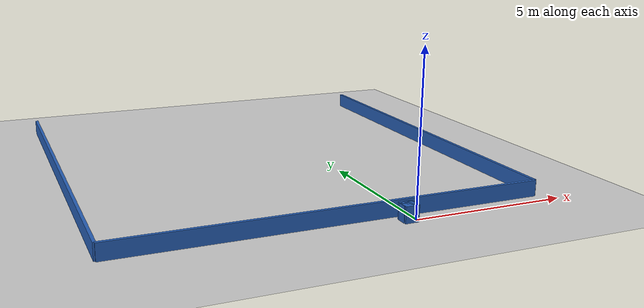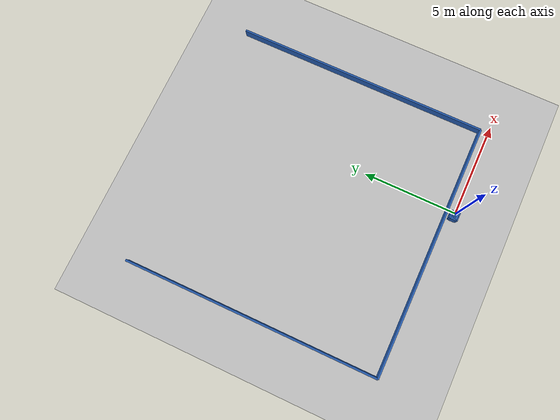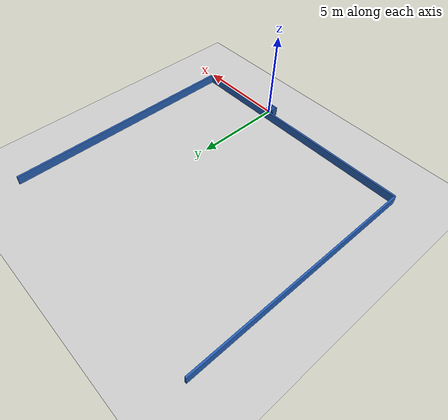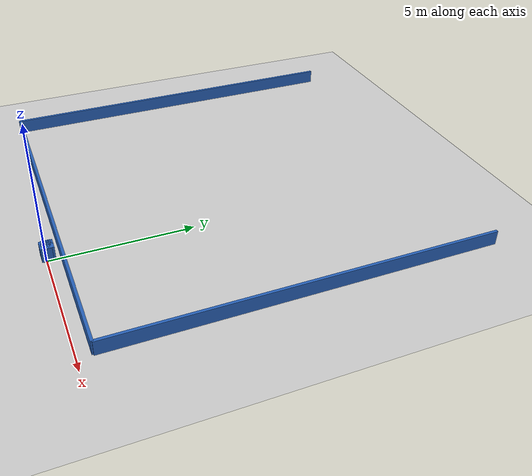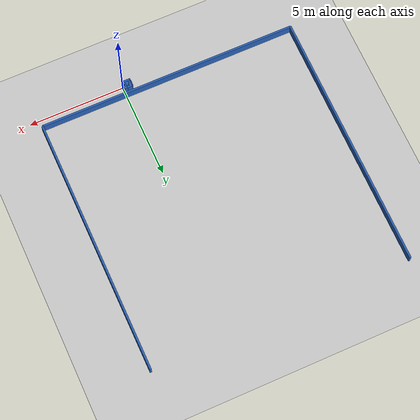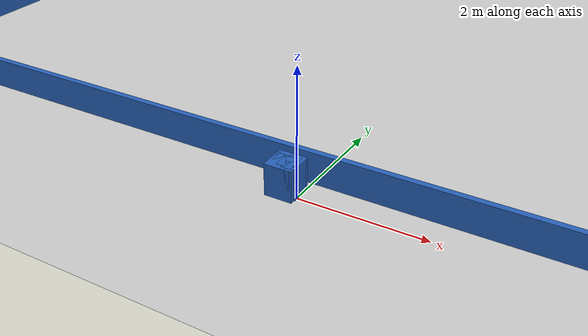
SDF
<?xml version="1.0" ?>
    <sdf version="1.5">
      <world name="default">
        <!-- A global light source -->
        <include>
          <uri>model://sun</uri>
        </include>
        <!-- A ground plane -->
        <include>
          <uri>model://ground_plane</uri>
        </include>

    <model name='libopen_space_final_T2B_56_75'>
      <static>1</static>
      <pose frame=''>-0.225000 0.075000 0.000000 0.000000 0.000000 0.000000</pose>
      <link name='link'>
        <inertial>
          <mass>1</mass>
          <inertia>
            <ixx>0.145833</ixx>
            <ixy>0</ixy>
            <ixz>0</ixz>
            <iyy>0.145833</iyy>
            <iyz>0</iyz>
            <izz>0.125</izz>
          </inertia>
        </inertial>
        <collision name='collision'>
          <geometry>
            <box>
              <size>0.36 0.27 1</size>
            </box>
          </geometry>
          <max_contacts>10</max_contacts>
          <surface>
            <contact>
              <ode/>
            </contact>
            <bounce/>
            <friction>
              <torsional>
                <ode/>
              </torsional>
              <ode/>
            </friction>
          </surface>
        </collision>
        <visual name='visual'>
          <geometry>
            <box>
              <size>0.36 0.27 1</size>
            </box>
          </geometry>
	    <material>
              <ambient>0.152000 0.379000 0.720000 1</ambient>
	      <diffuse>0.152000 0.379000 0.720000 1</diffuse>
          </material>
          <material>
            <script>
              <name>Gazebo/Grey</name>
              <uri>file://media/materials/scripts/gazebo.material</uri>
            </script>
          </material>
        </visual>
        <self_collide>0</self_collide>
        <kinematic>0</kinematic>
        <gravity>1</gravity>
      </link>
      <plugin name='libopen_space_final_T2B_56_75' filename='libopen_space_final_T2B_56_75.so'/>
    </model>

    <model name='libopen_space_final_T2B_123_20'>
      <static>1</static>
      <pose frame=''>-0.225000 0.075000 0.000000 0.000000 0.000000 0.000000</pose>
      <link name='link'>
        <inertial>
          <mass>1</mass>
          <inertia>
            <ixx>0.145833</ixx>
            <ixy>0</ixy>
            <ixz>0</ixz>
            <iyy>0.145833</iyy>
            <iyz>0</iyz>
            <izz>0.125</izz>
          </inertia>
        </inertial>
        <collision name='collision'>
          <geometry>
            <box>
              <size>0.40 0.28 1</size>
            </box>
          </geometry>
          <max_contacts>10</max_contacts>
          <surface>
            <contact>
              <ode/>
            </contact>
            <bounce/>
            <friction>
              <torsional>
                <ode/>
              </torsional>
              <ode/>
            </friction>
          </surface>
        </collision>
        <visual name='visual'>
          <geometry>
            <box>
              <size>0.40 0.28 1</size>
            </box>
          </geometry>
	    <material>
              <ambient>0.152000 0.379000 0.720000 1</ambient>
	      <diffuse>0.152000 0.379000 0.720000 1</diffuse>
          </material>
          <material>
            <script>
              <name>Gazebo/Grey</name>
              <uri>file://media/materials/scripts/gazebo.material</uri>
            </script>
          </material>
        </visual>
        <self_collide>0</self_collide>
        <kinematic>0</kinematic>
        <gravity>1</gravity>
      </link>
      <plugin name='libopen_space_final_T2B_123_20' filename='libopen_space_final_T2B_123_20.so'/>
    </model>

    <model name='libopen_space_final_T2B_112_28'>
      <static>1</static>
      <pose frame=''>-0.225000 0.075000 0.000000 0.000000 0.000000 0.000000</pose>
      <link name='link'>
        <inertial>
          <mass>1</mass>
          <inertia>
            <ixx>0.145833</ixx>
            <ixy>0</ixy>
            <ixz>0</ixz>
            <iyy>0.145833</iyy>
            <iyz>0</iyz>
            <izz>0.125</izz>
          </inertia>
        </inertial>
        <collision name='collision'>
          <geometry>
            <box>
              <size>0.44 0.45 1</size>
            </box>
          </geometry>
          <max_contacts>10</max_contacts>
          <surface>
            <contact>
              <ode/>
            </contact>
            <bounce/>
            <friction>
              <torsional>
                <ode/>
              </torsional>
              <ode/>
            </friction>
          </surface>
        </collision>
        <visual name='visual'>
          <geometry>
            <box>
              <size>0.44 0.45 1</size>
            </box>
          </geometry>
	    <material>
              <ambient>0.152000 0.379000 0.720000 1</ambient>
	      <diffuse>0.152000 0.379000 0.720000 1</diffuse>
          </material>
          <material>
            <script>
              <name>Gazebo/Grey</name>
              <uri>file://media/materials/scripts/gazebo.material</uri>
            </script>
          </material>
        </visual>
        <self_collide>0</self_collide>
        <kinematic>0</kinematic>
        <gravity>1</gravity>
      </link>
      <plugin name='libopen_space_final_T2B_112_28' filename='libopen_space_final_T2B_112_28.so'/>
    </model>

    <model name='libopen_space_final_T2B_119_97'>
      <static>1</static>
      <pose frame=''>-0.225000 0.075000 0.000000 0.000000 0.000000 0.000000</pose>
      <link name='link'>
        <inertial>
          <mass>1</mass>
          <inertia>
            <ixx>0.145833</ixx>
            <ixy>0</ixy>
            <ixz>0</ixz>
            <iyy>0.145833</iyy>
            <iyz>0</iyz>
            <izz>0.125</izz>
          </inertia>
        </inertial>
        <collision name='collision'>
          <geometry>
            <box>
              <size>0.47 0.30 1</size>
            </box>
          </geometry>
          <max_contacts>10</max_contacts>
          <surface>
            <contact>
              <ode/>
            </contact>
            <bounce/>
            <friction>
              <torsional>
                <ode/>
              </torsional>
              <ode/>
            </friction>
          </surface>
        </collision>
        <visual name='visual'>
          <geometry>
            <box>
              <size>0.47 0.30 1</size>
            </box>
          </geometry>
	    <material>
              <ambient>0.152000 0.379000 0.720000 1</ambient>
	      <diffuse>0.152000 0.379000 0.720000 1</diffuse>
          </material>
          <material>
            <script>
              <name>Gazebo/Grey</name>
              <uri>file://media/materials/scripts/gazebo.material</uri>
            </script>
          </material>
        </visual>
        <self_collide>0</self_collide>
        <kinematic>0</kinematic>
        <gravity>1</gravity>
      </link>
      <plugin name='libopen_space_final_T2B_119_97' filename='libopen_space_final_T2B_119_97.so'/>
    </model>

    <model name='libopen_space_final_T2B_81_4'>
      <static>1</static>
      <pose frame=''>-0.225000 0.075000 0.000000 0.000000 0.000000 0.000000</pose>
      <link name='link'>
        <inertial>
          <mass>1</mass>
          <inertia>
            <ixx>0.145833</ixx>
            <ixy>0</ixy>
            <ixz>0</ixz>
            <iyy>0.145833</iyy>
            <iyz>0</iyz>
            <izz>0.125</izz>
          </inertia>
        </inertial>
        <collision name='collision'>
          <geometry>
            <box>
              <size>0.33 0.34 1</size>
            </box>
          </geometry>
          <max_contacts>10</max_contacts>
          <surface>
            <contact>
              <ode/>
            </contact>
            <bounce/>
            <friction>
              <torsional>
                <ode/>
              </torsional>
              <ode/>
            </friction>
          </surface>
        </collision>
        <visual name='visual'>
          <geometry>
            <box>
              <size>0.33 0.34 1</size>
            </box>
          </geometry>
	    <material>
              <ambient>0.152000 0.379000 0.720000 1</ambient>
	      <diffuse>0.152000 0.379000 0.720000 1</diffuse>
          </material>
          <material>
            <script>
              <name>Gazebo/Grey</name>
              <uri>file://media/materials/scripts/gazebo.material</uri>
            </script>
          </material>
        </visual>
        <self_collide>0</self_collide>
        <kinematic>0</kinematic>
        <gravity>1</gravity>
      </link>
      <plugin name='libopen_space_final_T2B_81_4' filename='libopen_space_final_T2B_81_4.so'/>
    </model>

    <model name='libopen_space_final_T2B_51_63'>
      <static>1</static>
      <pose frame=''>-0.225000 0.075000 0.000000 0.000000 0.000000 0.000000</pose>
      <link name='link'>
        <inertial>
          <mass>1</mass>
          <inertia>
            <ixx>0.145833</ixx>
            <ixy>0</ixy>
            <ixz>0</ixz>
            <iyy>0.145833</iyy>
            <iyz>0</iyz>
            <izz>0.125</izz>
          </inertia>
        </inertial>
        <collision name='collision'>
          <geometry>
            <box>
              <size>0.13 0.14 1</size>
            </box>
          </geometry>
          <max_contacts>10</max_contacts>
          <surface>
            <contact>
              <ode/>
            </contact>
            <bounce/>
            <friction>
              <torsional>
                <ode/>
              </torsional>
              <ode/>
            </friction>
          </surface>
        </collision>
        <visual name='visual'>
          <geometry>
            <box>
              <size>0.13 0.14 1</size>
            </box>
          </geometry>
	    <material>
              <ambient>0.152000 0.379000 0.720000 1</ambient>
	      <diffuse>0.152000 0.379000 0.720000 1</diffuse>
          </material>
          <material>
            <script>
              <name>Gazebo/Grey</name>
              <uri>file://media/materials/scripts/gazebo.material</uri>
            </script>
          </material>
        </visual>
        <self_collide>0</self_collide>
        <kinematic>0</kinematic>
        <gravity>1</gravity>
      </link>
      <plugin name='libopen_space_final_T2B_51_63' filename='libopen_space_final_T2B_51_63.so'/>
    </model>

    <model name='libopen_space_final_T2B_125_67'>
      <static>1</static>
      <pose frame=''>-0.225000 0.075000 0.000000 0.000000 0.000000 0.000000</pose>
      <link name='link'>
        <inertial>
          <mass>1</mass>
          <inertia>
            <ixx>0.145833</ixx>
            <ixy>0</ixy>
            <ixz>0</ixz>
            <iyy>0.145833</iyy>
            <iyz>0</iyz>
            <izz>0.125</izz>
          </inertia>
        </inertial>
        <collision name='collision'>
          <geometry>
            <box>
              <size>0.16 0.27 1</size>
            </box>
          </geometry>
          <max_contacts>10</max_contacts>
          <surface>
            <contact>
              <ode/>
            </contact>
            <bounce/>
            <friction>
              <torsional>
                <ode/>
              </torsional>
              <ode/>
            </friction>
          </surface>
        </collision>
        <visual name='visual'>
          <geometry>
            <box>
              <size>0.16 0.27 1</size>
            </box>
          </geometry>
	    <material>
              <ambient>0.152000 0.379000 0.720000 1</ambient>
	      <diffuse>0.152000 0.379000 0.720000 1</diffuse>
          </material>
          <material>
            <script>
              <name>Gazebo/Grey</name>
              <uri>file://media/materials/scripts/gazebo.material</uri>
            </script>
          </material>
        </visual>
        <self_collide>0</self_collide>
        <kinematic>0</kinematic>
        <gravity>1</gravity>
      </link>
      <plugin name='libopen_space_final_T2B_125_67' filename='libopen_space_final_T2B_125_67.so'/>
    </model>

    <model name='libopen_space_final_T2B_81_89'>
      <static>1</static>
      <pose frame=''>-0.225000 0.075000 0.000000 0.000000 0.000000 0.000000</pose>
      <link name='link'>
        <inertial>
          <mass>1</mass>
          <inertia>
            <ixx>0.145833</ixx>
            <ixy>0</ixy>
            <ixz>0</ixz>
            <iyy>0.145833</iyy>
            <iyz>0</iyz>
            <izz>0.125</izz>
          </inertia>
        </inertial>
        <collision name='collision'>
          <geometry>
            <box>
              <size>0.18 0.36 1</size>
            </box>
          </geometry>
          <max_contacts>10</max_contacts>
          <surface>
            <contact>
              <ode/>
            </contact>
            <bounce/>
            <friction>
              <torsional>
                <ode/>
              </torsional>
              <ode/>
            </friction>
          </surface>
        </collision>
        <visual name='visual'>
          <geometry>
            <box>
              <size>0.18 0.36 1</size>
            </box>
          </geometry>
	    <material>
              <ambient>0.152000 0.379000 0.720000 1</ambient>
	      <diffuse>0.152000 0.379000 0.720000 1</diffuse>
          </material>
          <material>
            <script>
              <name>Gazebo/Grey</name>
              <uri>file://media/materials/scripts/gazebo.material</uri>
            </script>
          </material>
        </visual>
        <self_collide>0</self_collide>
        <kinematic>0</kinematic>
        <gravity>1</gravity>
      </link>
      <plugin name='libopen_space_final_T2B_81_89' filename='libopen_space_final_T2B_81_89.so'/>
    </model>

    <model name='libopen_space_final_T2B_125_59'>
      <static>1</static>
      <pose frame=''>-0.225000 0.075000 0.000000 0.000000 0.000000 0.000000</pose>
      <link name='link'>
        <inertial>
          <mass>1</mass>
          <inertia>
            <ixx>0.145833</ixx>
            <ixy>0</ixy>
            <ixz>0</ixz>
            <iyy>0.145833</iyy>
            <iyz>0</iyz>
            <izz>0.125</izz>
          </inertia>
        </inertial>
        <collision name='collision'>
          <geometry>
            <box>
              <size>0.32 0.18 1</size>
            </box>
          </geometry>
          <max_contacts>10</max_contacts>
          <surface>
            <contact>
              <ode/>
            </contact>
            <bounce/>
            <friction>
              <torsional>
                <ode/>
              </torsional>
              <ode/>
            </friction>
          </surface>
        </collision>
        <visual name='visual'>
          <geometry>
            <box>
              <size>0.32 0.18 1</size>
            </box>
          </geometry>
	    <material>
              <ambient>0.152000 0.379000 0.720000 1</ambient>
	      <diffuse>0.152000 0.379000 0.720000 1</diffuse>
          </material>
          <material>
            <script>
              <name>Gazebo/Grey</name>
              <uri>file://media/materials/scripts/gazebo.material</uri>
            </script>
          </material>
        </visual>
        <self_collide>0</self_collide>
        <kinematic>0</kinematic>
        <gravity>1</gravity>
      </link>
      <plugin name='libopen_space_final_T2B_125_59' filename='libopen_space_final_T2B_125_59.so'/>
    </model>

    <model name='libopen_space_final_T2B_77_83'>
      <static>1</static>
      <pose frame=''>-0.225000 0.075000 0.000000 0.000000 0.000000 0.000000</pose>
      <link name='link'>
        <inertial>
          <mass>1</mass>
          <inertia>
            <ixx>0.145833</ixx>
            <ixy>0</ixy>
            <ixz>0</ixz>
            <iyy>0.145833</iyy>
            <iyz>0</iyz>
            <izz>0.125</izz>
          </inertia>
        </inertial>
        <collision name='collision'>
          <geometry>
            <box>
              <size>0.36 0.45 1</size>
            </box>
          </geometry>
          <max_contacts>10</max_contacts>
          <surface>
            <contact>
              <ode/>
            </contact>
            <bounce/>
            <friction>
              <torsional>
                <ode/>
              </torsional>
              <ode/>
            </friction>
          </surface>
        </collision>
        <visual name='visual'>
          <geometry>
            <box>
              <size>0.36 0.45 1</size>
            </box>
          </geometry>
	    <material>
              <ambient>0.152000 0.379000 0.720000 1</ambient>
	      <diffuse>0.152000 0.379000 0.720000 1</diffuse>
          </material>
          <material>
            <script>
              <name>Gazebo/Grey</name>
              <uri>file://media/materials/scripts/gazebo.material</uri>
            </script>
          </material>
        </visual>
        <self_collide>0</self_collide>
        <kinematic>0</kinematic>
        <gravity>1</gravity>
      </link>
      <plugin name='libopen_space_final_T2B_77_83' filename='libopen_space_final_T2B_77_83.so'/>
    </model>

    <model name='libopen_space_final_T2B_122_30'>
      <static>1</static>
      <pose frame=''>-0.225000 0.075000 0.000000 0.000000 0.000000 0.000000</pose>
      <link name='link'>
        <inertial>
          <mass>1</mass>
          <inertia>
            <ixx>0.145833</ixx>
            <ixy>0</ixy>
            <ixz>0</ixz>
            <iyy>0.145833</iyy>
            <iyz>0</iyz>
            <izz>0.125</izz>
          </inertia>
        </inertial>
        <collision name='collision'>
          <geometry>
            <box>
              <size>0.12 0.30 1</size>
            </box>
          </geometry>
          <max_contacts>10</max_contacts>
          <surface>
            <contact>
              <ode/>
            </contact>
            <bounce/>
            <friction>
              <torsional>
                <ode/>
              </torsional>
              <ode/>
            </friction>
          </surface>
        </collision>
        <visual name='visual'>
          <geometry>
            <box>
              <size>0.12 0.30 1</size>
            </box>
          </geometry>
	    <material>
              <ambient>0.152000 0.379000 0.720000 1</ambient>
	      <diffuse>0.152000 0.379000 0.720000 1</diffuse>
          </material>
          <material>
            <script>
              <name>Gazebo/Grey</name>
              <uri>file://media/materials/scripts/gazebo.material</uri>
            </script>
          </material>
        </visual>
        <self_collide>0</self_collide>
        <kinematic>0</kinematic>
        <gravity>1</gravity>
      </link>
      <plugin name='libopen_space_final_T2B_122_30' filename='libopen_space_final_T2B_122_30.so'/>
    </model>

        <model name='bottom_wall'>
          <static>1</static>
          <pose frame=''>-2.25 0.5 0.000000 0.000000 0.000000 1.57079632</pose>
          <link name='link'>
            <inertial>
            <mass>1</mass>
            <inertia>
              <ixx>0.145833</ixx>
              <ixy>0</ixy>
              <ixz>0</ixz>
              <iyy>0.145833</iyy>
              <iyz>0</iyz>
              <izz>0.125</izz>
            </inertia>
            </inertial>
            <collision name='collision'>
            <geometry>
              <box>
              <size>0.1 13.5 1</size>
              </box>
            </geometry>
            <max_contacts>10</max_contacts>
            <surface>
              <contact>
              <ode/>
              </contact>
              <bounce/>
              <friction>
              <torsional>
                <ode/>
              </torsional>
              <ode/>
              </friction>
            </surface>
            </collision>
            <visual name='visual'>
            <geometry>
              <box>
              <size>0.1 13.5 1</size>
              </box>
            </geometry>
            <material>
              <ambient>0.152000 0.379000 0.720000 1</ambient>
            <diffuse>0.152000 0.379000 0.720000 1</diffuse>
            </material>
            <material>
              <script>
              <name>Gazebo/Grey</name>
              <uri>file://media/materials/scripts/gazebo.material</uri>
              </script>
            </material>
            </visual>
            <self_collide>0</self_collide>
            <kinematic>0</kinematic>
            <gravity>1</gravity>
          </link>
        </model>

        <model name='left_wall'>
          <static>1</static>
          <pose frame=''>-9 7.25 0.000000 0.000000 0.000000 0.000000</pose>
          <link name='link'>
            <inertial>
            <mass>1</mass>
            <inertia>
              <ixx>0.145833</ixx>
              <ixy>0</ixy>
              <ixz>0</ixz>
              <iyy>0.145833</iyy>
              <iyz>0</iyz>
              <izz>0.125</izz>
            </inertia>
            </inertial>
            <collision name='collision'>
            <geometry>
              <box>
              <size>0.1 13.5 1</size>
              </box>
            </geometry>
            <max_contacts>10</max_contacts>
            <surface>
              <contact>
              <ode/>
              </contact>
              <bounce/>
              <friction>
              <torsional>
                <ode/>
              </torsional>
              <ode/>
              </friction>
            </surface>
            </collision>
            <visual name='visual'>
            <geometry>
              <box>
              <size>0.1 13.5 1</size>
              </box>
            </geometry>
            <material>
              <ambient>0.152000 0.379000 0.720000 1</ambient>
            <diffuse>0.152000 0.379000 0.720000 1</diffuse>
            </material>
            <material>
              <script>
              <name>Gazebo/Grey</name>
              <uri>file://media/materials/scripts/gazebo.material</uri>
              </script>
            </material>
            </visual>
            <self_collide>0</self_collide>
            <kinematic>0</kinematic>
            <gravity>1</gravity>
          </link>
        </model>

        <model name='right_wall'>
          <static>1</static>
          <pose frame=''>4.5 7.25 0.000000 0.000000 0.000000 0.000000</pose>
          <link name='link'>
            <inertial>
            <mass>1</mass>
            <inertia>
              <ixx>0.145833</ixx>
              <ixy>0</ixy>
              <ixz>0</ixz>
              <iyy>0.145833</iyy>
              <iyz>0</iyz>
              <izz>0.125</izz>
            </inertia>
            </inertial>
            <collision name='collision'>
            <geometry>
              <box>
              <size>0.1 13.5 1</size>
              </box>
            </geometry>
            <max_contacts>10</max_contacts>
            <surface>
              <contact>
              <ode/>
              </contact>
              <bounce/>
              <friction>
              <torsional>
                <ode/>
              </torsional>
              <ode/>
              </friction>
            </surface>
            </collision>
            <visual name='visual'>
            <geometry>
              <box>
              <size>0.1 13.5 1</size>
              </box>
            </geometry>
            <material>
              <ambient>0.152000 0.379000 0.720000 1</ambient>
            <diffuse>0.152000 0.379000 0.720000 1</diffuse>
            </material>
            <material>
              <script>
              <name>Gazebo/Grey</name>
              <uri>file://media/materials/scripts/gazebo.material</uri>
              </script>
            </material>
            </visual>
            <self_collide>0</self_collide>
            <kinematic>0</kinematic>
            <gravity>1</gravity>
          </link>
        </model>

      </world>
    </sdf>"
